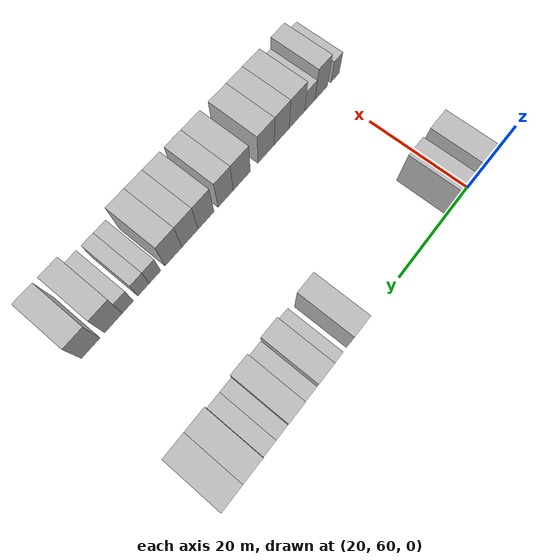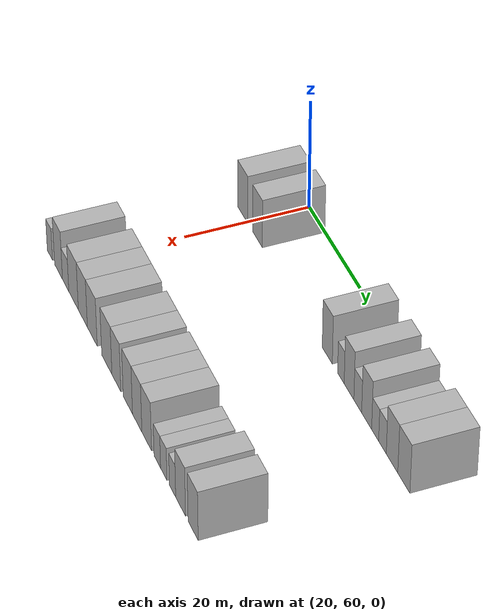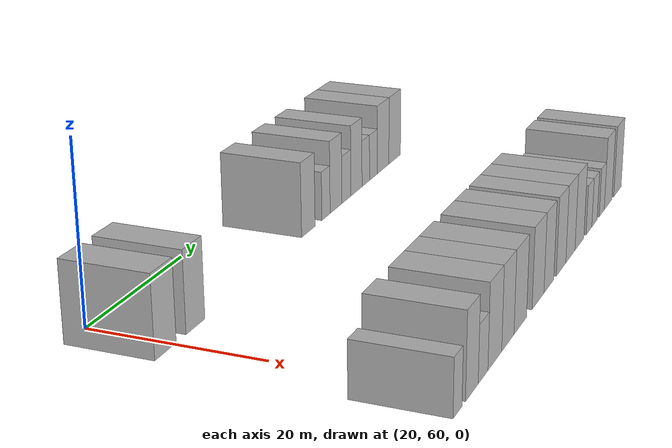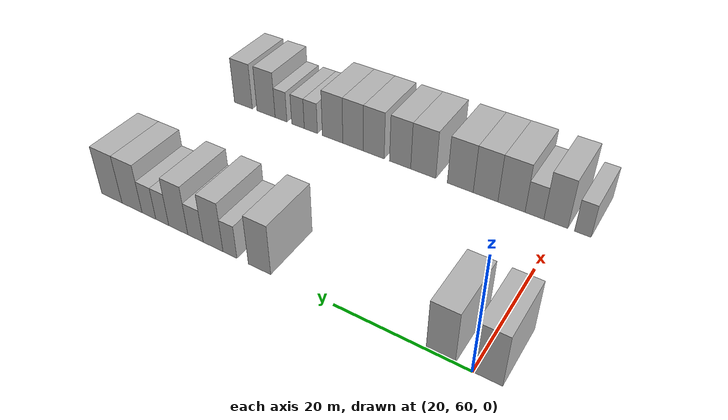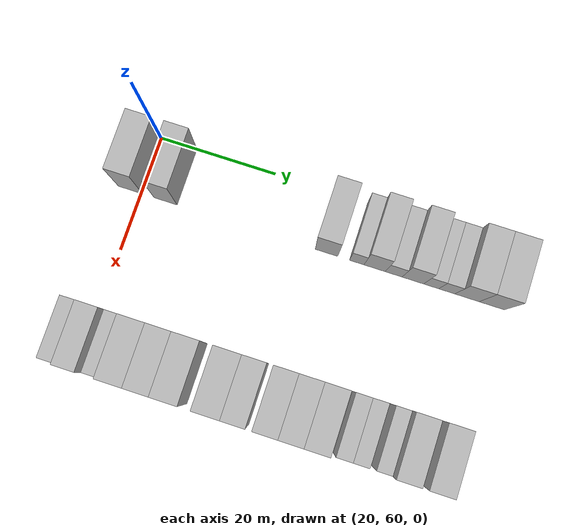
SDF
<sdf version="1.6">
 <world name="default">
  <model name="building_70">
   <static>1</static>
   <pose>25.0000 58.1823 0 0.000000 0.000000 0.000000</pose>
   <link name="link">
    <pose>0 0 4.50 0 0 0</pose>
    <collision name="collision"><geometry><box><size>10.0000 4.2589 9.0000</size></box></geometry></collision>
    <visual name="visual">
     <cast_shadows>0</cast_shadows>
     <geometry><box><size>10.0000 4.2589 9.0000</size></box></geometry>
     <material>
      <script>
       <uri>model://HANNAS_wall/materials/scripts</uri>
       <uri>model://HANNAS_wall/materials/textures</uri>
       <name>vrc/HANNAS_wall</name>
      </script>
     </material>
    </visual>
   </link>
  </model>
  <model name="building_71">
   <static>1</static>
   <pose>25.0000 64.3200 0 0.000000 0.000000 0.000000</pose>
   <link name="link">
    <pose>0 0 4.50 0 0 0</pose>
    <collision name="collision"><geometry><box><size>10.0000 4.0165 9.0000</size></box></geometry></collision>
    <visual name="visual">
     <cast_shadows>0</cast_shadows>
     <geometry><box><size>10.0000 4.0165 9.0000</size></box></geometry>
     <material>
      <script>
       <uri>model://HANNAS_wall/materials/scripts</uri>
       <uri>model://HANNAS_wall/materials/textures</uri>
       <name>vrc/HANNAS_wall</name>
      </script>
     </material>
    </visual>
   </link>
  </model>
  <model name="building_72">
   <static>1</static>
   <pose>25.0000 92.0905 0 0.000000 0.000000 0.000000</pose>
   <link name="link">
    <pose>0 0 4.50 0 0 0</pose>
    <collision name="collision"><geometry><box><size>10.0000 3.8415 9.0000</size></box></geometry></collision>
    <visual name="visual">
     <cast_shadows>0</cast_shadows>
     <geometry><box><size>10.0000 3.8415 9.0000</size></box></geometry>
     <material>
      <script>
       <uri>model://HANNAS_wall/materials/scripts</uri>
       <uri>model://HANNAS_wall/materials/textures</uri>
       <name>vrc/HANNAS_wall</name>
      </script>
     </material>
    </visual>
   </link>
  </model>
  <model name="building_73">
   <static>1</static>
   <pose>25.0000 97.2475 0 0.000000 0.000000 0.000000</pose>
   <link name="link">
    <pose>0 0 3.00 0 0 0</pose>
    <collision name="collision"><geometry><box><size>10.0000 2.4726 6.0000</size></box></geometry></collision>
    <visual name="visual">
     <cast_shadows>0</cast_shadows>
     <geometry><box><size>10.0000 2.4726 6.0000</size></box></geometry>
     <material>
      <script>
       <uri>model://HANNAS_wall/materials/scripts</uri>
       <uri>model://HANNAS_wall/materials/textures</uri>
       <name>vrc/HANNAS_wall</name>
      </script>
     </material>
    </visual>
   </link>
  </model>
  <model name="building_74">
   <static>1</static>
   <pose>25.0000 100.2885 0 0.000000 0.000000 0.000000</pose>
   <link name="link">
    <pose>0 0 4.50 0 0 0</pose>
    <collision name="collision"><geometry><box><size>10.0000 3.6093 9.0000</size></box></geometry></collision>
    <visual name="visual">
     <cast_shadows>0</cast_shadows>
     <geometry><box><size>10.0000 3.6093 9.0000</size></box></geometry>
     <material>
      <script>
       <uri>model://HANNAS_wall/materials/scripts</uri>
       <uri>model://HANNAS_wall/materials/textures</uri>
       <name>vrc/HANNAS_wall</name>
      </script>
     </material>
    </visual>
   </link>
  </model>
  <model name="building_75">
   <static>1</static>
   <pose>25.0000 103.5223 0 0.000000 0.000000 0.000000</pose>
   <link name="link">
    <pose>0 0 3.00 0 0 0</pose>
    <collision name="collision"><geometry><box><size>10.0000 2.8584 6.0000</size></box></geometry></collision>
    <visual name="visual">
     <cast_shadows>0</cast_shadows>
     <geometry><box><size>10.0000 2.8584 6.0000</size></box></geometry>
     <material>
      <script>
       <uri>model://HANNAS_wall/materials/scripts</uri>
       <uri>model://HANNAS_wall/materials/textures</uri>
       <name>vrc/HANNAS_wall</name>
      </script>
     </material>
    </visual>
   </link>
  </model>
  <model name="building_76">
   <static>1</static>
   <pose>25.0000 106.7729 0 0.000000 0.000000 0.000000</pose>
   <link name="link">
    <pose>0 0 4.50 0 0 0</pose>
    <collision name="collision"><geometry><box><size>10.0000 3.6430 9.0000</size></box></geometry></collision>
    <visual name="visual">
     <cast_shadows>0</cast_shadows>
     <geometry><box><size>10.0000 3.6430 9.0000</size></box></geometry>
     <material>
      <script>
       <uri>model://HANNAS_wall/materials/scripts</uri>
       <uri>model://HANNAS_wall/materials/textures</uri>
       <name>vrc/HANNAS_wall</name>
      </script>
     </material>
    </visual>
   </link>
  </model>
  <model name="building_77">
   <static>1</static>
   <pose>25.0000 109.8580 0 0.000000 0.000000 0.000000</pose>
   <link name="link">
    <pose>0 0 3.00 0 0 0</pose>
    <collision name="collision"><geometry><box><size>10.0000 2.5271 6.0000</size></box></geometry></collision>
    <visual name="visual">
     <cast_shadows>0</cast_shadows>
     <geometry><box><size>10.0000 2.5271 6.0000</size></box></geometry>
     <material>
      <script>
       <uri>model://HANNAS_wall/materials/scripts</uri>
       <uri>model://HANNAS_wall/materials/textures</uri>
       <name>vrc/HANNAS_wall</name>
      </script>
     </material>
    </visual>
   </link>
  </model>
  <model name="building_78">
   <static>1</static>
   <pose>25.0000 112.4826 0 0.000000 0.000000 0.000000</pose>
   <link name="link">
    <pose>0 0 3.00 0 0 0</pose>
    <collision name="collision"><geometry><box><size>10.0000 2.7220 6.0000</size></box></geometry></collision>
    <visual name="visual">
     <cast_shadows>0</cast_shadows>
     <geometry><box><size>10.0000 2.7220 6.0000</size></box></geometry>
     <material>
      <script>
       <uri>model://HANNAS_wall/materials/scripts</uri>
       <uri>model://HANNAS_wall/materials/textures</uri>
       <name>vrc/HANNAS_wall</name>
      </script>
     </material>
    </visual>
   </link>
  </model>
  <model name="building_79">
   <static>1</static>
   <pose>25.0000 115.8834 0 0.000000 0.000000 0.000000</pose>
   <link name="link">
    <pose>0 0 4.50 0 0 0</pose>
    <collision name="collision"><geometry><box><size>10.0000 4.0797 9.0000</size></box></geometry></collision>
    <visual name="visual">
     <cast_shadows>0</cast_shadows>
     <geometry><box><size>10.0000 4.0797 9.0000</size></box></geometry>
     <material>
      <script>
       <uri>model://HANNAS_wall/materials/scripts</uri>
       <uri>model://HANNAS_wall/materials/textures</uri>
       <name>vrc/HANNAS_wall</name>
      </script>
     </material>
    </visual>
   </link>
  </model>
  <model name="building_80">
   <static>1</static>
   <pose>25.0000 120.0440 0 0.000000 0.000000 0.000000</pose>
   <link name="link">
    <pose>0 0 4.50 0 0 0</pose>
    <collision name="collision"><geometry><box><size>10.0000 4.2415 9.0000</size></box></geometry></collision>
    <visual name="visual">
     <cast_shadows>0</cast_shadows>
     <geometry><box><size>10.0000 4.2415 9.0000</size></box></geometry>
     <material>
      <script>
       <uri>model://HANNAS_wall/materials/scripts</uri>
       <uri>model://HANNAS_wall/materials/textures</uri>
       <name>vrc/HANNAS_wall</name>
      </script>
     </material>
    </visual>
   </link>
  </model>
  <model name="building_173">
   <static>1</static>
   <pose>55.0000 56.7303 0 0.000000 0.000000 0.000000</pose>
   <link name="link">
    <pose>0 0 3.00 0 0 0</pose>
    <collision name="collision"><geometry><box><size>10.0000 2.4777 6.0000</size></box></geometry></collision>
    <visual name="visual">
     <cast_shadows>0</cast_shadows>
     <geometry><box><size>10.0000 2.4777 6.0000</size></box></geometry>
     <material>
      <script>
       <uri>model://HANNAS_wall/materials/scripts</uri>
       <uri>model://HANNAS_wall/materials/textures</uri>
       <name>vrc/HANNAS_wall</name>
      </script>
     </material>
    </visual>
   </link>
  </model>
  <model name="building_174">
   <static>1</static>
   <pose>55.0000 60.8066 0 0.000000 0.000000 0.000000</pose>
   <link name="link">
    <pose>0 0 4.50 0 0 0</pose>
    <collision name="collision"><geometry><box><size>10.0000 3.6749 9.0000</size></box></geometry></collision>
    <visual name="visual">
     <cast_shadows>0</cast_shadows>
     <geometry><box><size>10.0000 3.6749 9.0000</size></box></geometry>
     <material>
      <script>
       <uri>model://HANNAS_wall/materials/scripts</uri>
       <uri>model://HANNAS_wall/materials/textures</uri>
       <name>vrc/HANNAS_wall</name>
      </script>
     </material>
    </visual>
   </link>
  </model>
  <model name="building_175">
   <static>1</static>
   <pose>55.0000 64.1197 0 0.000000 0.000000 0.000000</pose>
   <link name="link">
    <pose>0 0 3.00 0 0 0</pose>
    <collision name="collision"><geometry><box><size>10.0000 2.9514 6.0000</size></box></geometry></collision>
    <visual name="visual">
     <cast_shadows>0</cast_shadows>
     <geometry><box><size>10.0000 2.9514 6.0000</size></box></geometry>
     <material>
      <script>
       <uri>model://HANNAS_wall/materials/scripts</uri>
       <uri>model://HANNAS_wall/materials/textures</uri>
       <name>vrc/HANNAS_wall</name>
      </script>
     </material>
    </visual>
   </link>
  </model>
  <model name="building_176">
   <static>1</static>
   <pose>55.0000 67.7822 0 0.000000 0.000000 0.000000</pose>
   <link name="link">
    <pose>0 0 4.50 0 0 0</pose>
    <collision name="collision"><geometry><box><size>10.0000 4.3735 9.0000</size></box></geometry></collision>
    <visual name="visual">
     <cast_shadows>0</cast_shadows>
     <geometry><box><size>10.0000 4.3735 9.0000</size></box></geometry>
     <material>
      <script>
       <uri>model://HANNAS_wall/materials/scripts</uri>
       <uri>model://HANNAS_wall/materials/textures</uri>
       <name>vrc/HANNAS_wall</name>
      </script>
     </material>
    </visual>
   </link>
  </model>
  <model name="building_177">
   <static>1</static>
   <pose>55.0000 72.0140 0 0.000000 0.000000 0.000000</pose>
   <link name="link">
    <pose>0 0 4.50 0 0 0</pose>
    <collision name="collision"><geometry><box><size>10.0000 4.0902 9.0000</size></box></geometry></collision>
    <visual name="visual">
     <cast_shadows>0</cast_shadows>
     <geometry><box><size>10.0000 4.0902 9.0000</size></box></geometry>
     <material>
      <script>
       <uri>model://HANNAS_wall/materials/scripts</uri>
       <uri>model://HANNAS_wall/materials/textures</uri>
       <name>vrc/HANNAS_wall</name>
      </script>
     </material>
    </visual>
   </link>
  </model>
  <model name="building_178">
   <static>1</static>
   <pose>55.0000 76.2609 0 0.000000 0.000000 0.000000</pose>
   <link name="link">
    <pose>0 0 4.50 0 0 0</pose>
    <collision name="collision"><geometry><box><size>10.0000 4.4037 9.0000</size></box></geometry></collision>
    <visual name="visual">
     <cast_shadows>0</cast_shadows>
     <geometry><box><size>10.0000 4.4037 9.0000</size></box></geometry>
     <material>
      <script>
       <uri>model://HANNAS_wall/materials/scripts</uri>
       <uri>model://HANNAS_wall/materials/textures</uri>
       <name>vrc/HANNAS_wall</name>
      </script>
     </material>
    </visual>
   </link>
  </model>
  <model name="building_179">
   <static>1</static>
   <pose>55.0000 82.6978 0 0.000000 0.000000 0.000000</pose>
   <link name="link">
    <pose>0 0 4.50 0 0 0</pose>
    <collision name="collision"><geometry><box><size>10.0000 4.4700 9.0000</size></box></geometry></collision>
    <visual name="visual">
     <cast_shadows>0</cast_shadows>
     <geometry><box><size>10.0000 4.4700 9.0000</size></box></geometry>
     <material>
      <script>
       <uri>model://HANNAS_wall/materials/scripts</uri>
       <uri>model://HANNAS_wall/materials/textures</uri>
       <name>vrc/HANNAS_wall</name>
      </script>
     </material>
    </visual>
   </link>
  </model>
  <model name="building_180">
   <static>1</static>
   <pose>55.0000 86.8655 0 0.000000 0.000000 0.000000</pose>
   <link name="link">
    <pose>0 0 4.50 0 0 0</pose>
    <collision name="collision"><geometry><box><size>10.0000 3.8655 9.0000</size></box></geometry></collision>
    <visual name="visual">
     <cast_shadows>0</cast_shadows>
     <geometry><box><size>10.0000 3.8655 9.0000</size></box></geometry>
     <material>
      <script>
       <uri>model://HANNAS_wall/materials/scripts</uri>
       <uri>model://HANNAS_wall/materials/textures</uri>
       <name>vrc/HANNAS_wall</name>
      </script>
     </material>
    </visual>
   </link>
  </model>
  <model name="building_181">
   <static>1</static>
   <pose>55.0000 91.7752 0 0.000000 0.000000 0.000000</pose>
   <link name="link">
    <pose>0 0 4.50 0 0 0</pose>
    <collision name="collision"><geometry><box><size>10.0000 3.9539 9.0000</size></box></geometry></collision>
    <visual name="visual">
     <cast_shadows>0</cast_shadows>
     <geometry><box><size>10.0000 3.9539 9.0000</size></box></geometry>
     <material>
      <script>
       <uri>model://HANNAS_wall/materials/scripts</uri>
       <uri>model://HANNAS_wall/materials/textures</uri>
       <name>vrc/HANNAS_wall</name>
      </script>
     </material>
    </visual>
   </link>
  </model>
  <model name="building_182">
   <static>1</static>
   <pose>55.0000 95.7240 0 0.000000 0.000000 0.000000</pose>
   <link name="link">
    <pose>0 0 4.50 0 0 0</pose>
    <collision name="collision"><geometry><box><size>10.0000 3.9437 9.0000</size></box></geometry></collision>
    <visual name="visual">
     <cast_shadows>0</cast_shadows>
     <geometry><box><size>10.0000 3.9437 9.0000</size></box></geometry>
     <material>
      <script>
       <uri>model://HANNAS_wall/materials/scripts</uri>
       <uri>model://HANNAS_wall/materials/textures</uri>
       <name>vrc/HANNAS_wall</name>
      </script>
     </material>
    </visual>
   </link>
  </model>
  <model name="building_183">
   <static>1</static>
   <pose>55.0000 99.7126 0 0.000000 0.000000 0.000000</pose>
   <link name="link">
    <pose>0 0 4.50 0 0 0</pose>
    <collision name="collision"><geometry><box><size>10.0000 4.0335 9.0000</size></box></geometry></collision>
    <visual name="visual">
     <cast_shadows>0</cast_shadows>
     <geometry><box><size>10.0000 4.0335 9.0000</size></box></geometry>
     <material>
      <script>
       <uri>model://HANNAS_wall/materials/scripts</uri>
       <uri>model://HANNAS_wall/materials/textures</uri>
       <name>vrc/HANNAS_wall</name>
      </script>
     </material>
    </visual>
   </link>
  </model>
  <model name="building_184">
   <static>1</static>
   <pose>55.0000 104.0659 0 0.000000 0.000000 0.000000</pose>
   <link name="link">
    <pose>0 0 3.00 0 0 0</pose>
    <collision name="collision"><geometry><box><size>10.0000 2.6730 6.0000</size></box></geometry></collision>
    <visual name="visual">
     <cast_shadows>0</cast_shadows>
     <geometry><box><size>10.0000 2.6730 6.0000</size></box></geometry>
     <material>
      <script>
       <uri>model://HANNAS_wall/materials/scripts</uri>
       <uri>model://HANNAS_wall/materials/textures</uri>
       <name>vrc/HANNAS_wall</name>
      </script>
     </material>
    </visual>
   </link>
  </model>
  <model name="building_185">
   <static>1</static>
   <pose>55.0000 106.7008 0 0.000000 0.000000 0.000000</pose>
   <link name="link">
    <pose>0 0 3.00 0 0 0</pose>
    <collision name="collision"><geometry><box><size>10.0000 2.5969 6.0000</size></box></geometry></collision>
    <visual name="visual">
     <cast_shadows>0</cast_shadows>
     <geometry><box><size>10.0000 2.5969 6.0000</size></box></geometry>
     <material>
      <script>
       <uri>model://HANNAS_wall/materials/scripts</uri>
       <uri>model://HANNAS_wall/materials/textures</uri>
       <name>vrc/HANNAS_wall</name>
      </script>
     </material>
    </visual>
   </link>
  </model>
  <model name="building_186">
   <static>1</static>
   <pose>55.0000 110.2476 0 0.000000 0.000000 0.000000</pose>
   <link name="link">
    <pose>0 0 3.00 0 0 0</pose>
    <collision name="collision"><geometry><box><size>10.0000 2.4967 6.0000</size></box></geometry></collision>
    <visual name="visual">
     <cast_shadows>0</cast_shadows>
     <geometry><box><size>10.0000 2.4967 6.0000</size></box></geometry>
     <material>
      <script>
       <uri>model://HANNAS_wall/materials/scripts</uri>
       <uri>model://HANNAS_wall/materials/textures</uri>
       <name>vrc/HANNAS_wall</name>
      </script>
     </material>
    </visual>
   </link>
  </model>
  <model name="building_187">
   <static>1</static>
   <pose>55.0000 113.4523 0 0.000000 0.000000 0.000000</pose>
   <link name="link">
    <pose>0 0 4.50 0 0 0</pose>
    <collision name="collision"><geometry><box><size>10.0000 3.9126 9.0000</size></box></geometry></collision>
    <visual name="visual">
     <cast_shadows>0</cast_shadows>
     <geometry><box><size>10.0000 3.9126 9.0000</size></box></geometry>
     <material>
      <script>
       <uri>model://HANNAS_wall/materials/scripts</uri>
       <uri>model://HANNAS_wall/materials/textures</uri>
       <name>vrc/HANNAS_wall</name>
      </script>
     </material>
    </visual>
   </link>
  </model>
  <model name="building_188">
   <static>1</static>
   <pose>55.0000 118.3908 0 0.000000 0.000000 0.000000</pose>
   <link name="link">
    <pose>0 0 4.50 0 0 0</pose>
    <collision name="collision"><geometry><box><size>10.0000 3.9645 9.0000</size></box></geometry></collision>
    <visual name="visual">
     <cast_shadows>0</cast_shadows>
     <geometry><box><size>10.0000 3.9645 9.0000</size></box></geometry>
     <material>
      <script>
       <uri>model://HANNAS_wall/materials/scripts</uri>
       <uri>model://HANNAS_wall/materials/textures</uri>
       <name>vrc/HANNAS_wall</name>
      </script>
     </material>
    </visual>
   </link>
  </model>
 </world>
</sdf>
